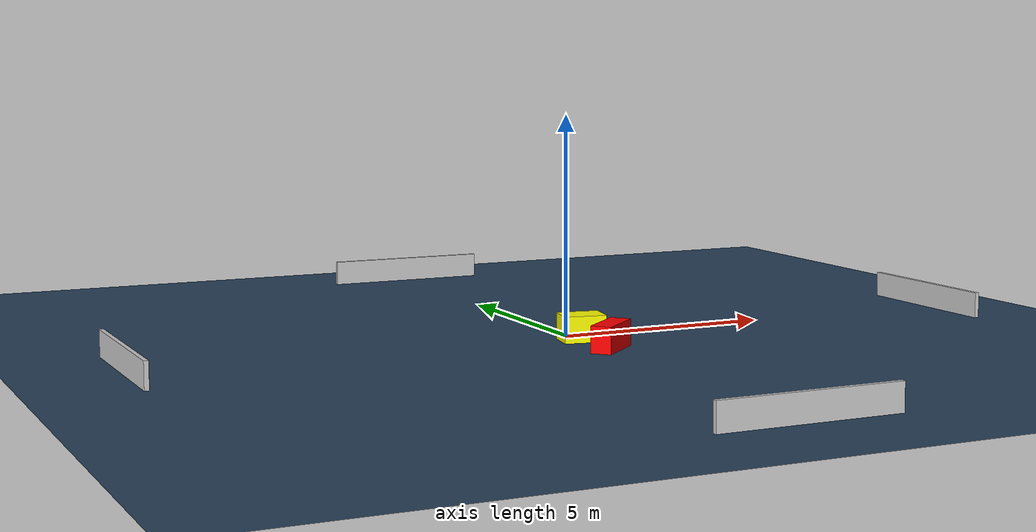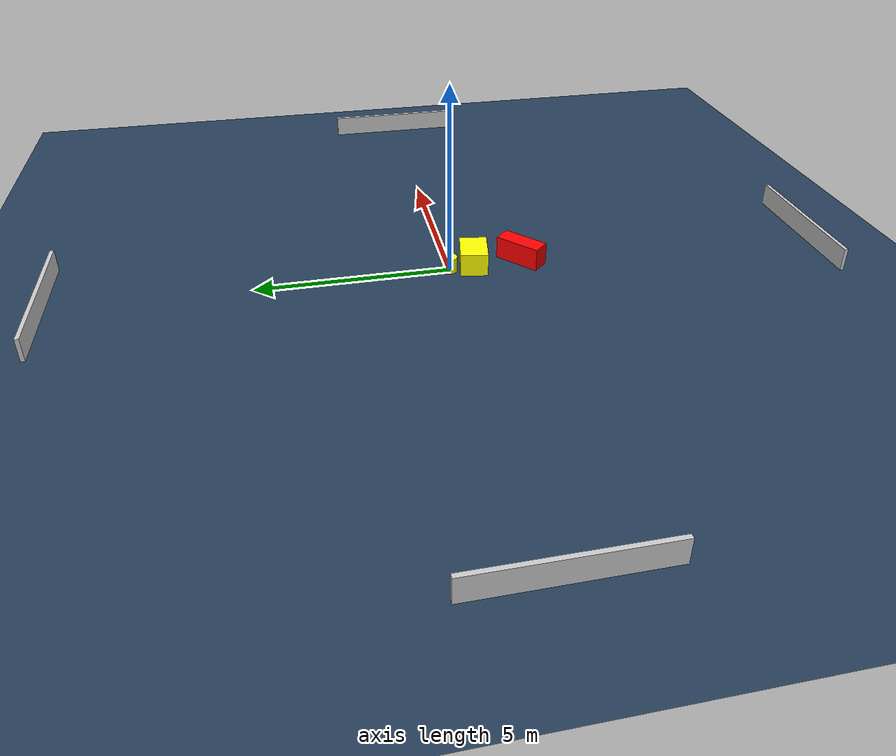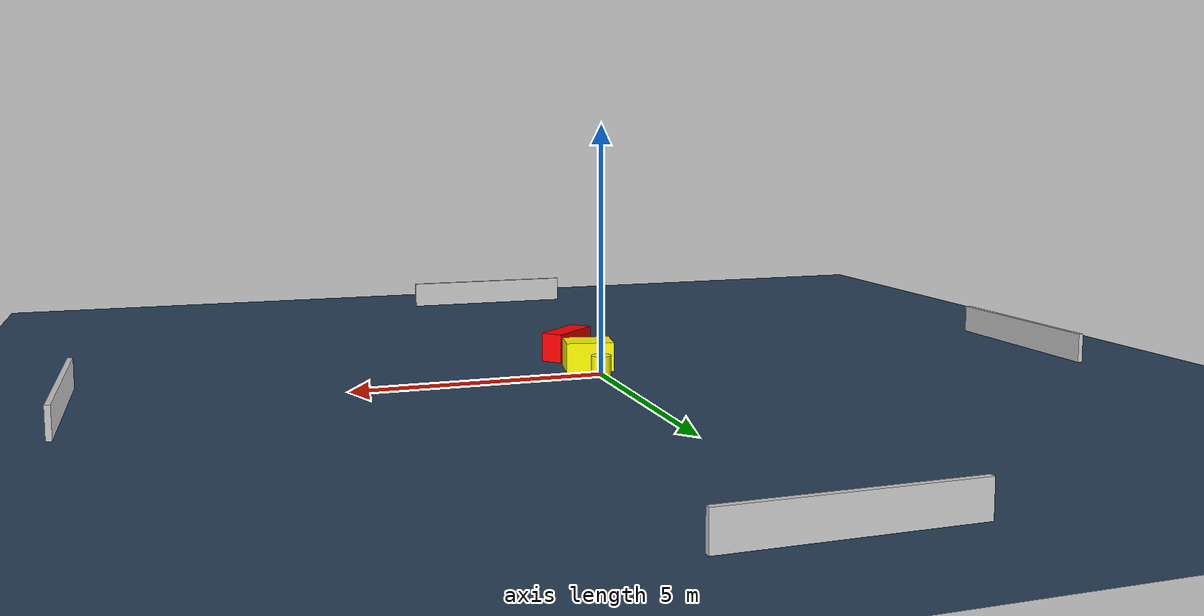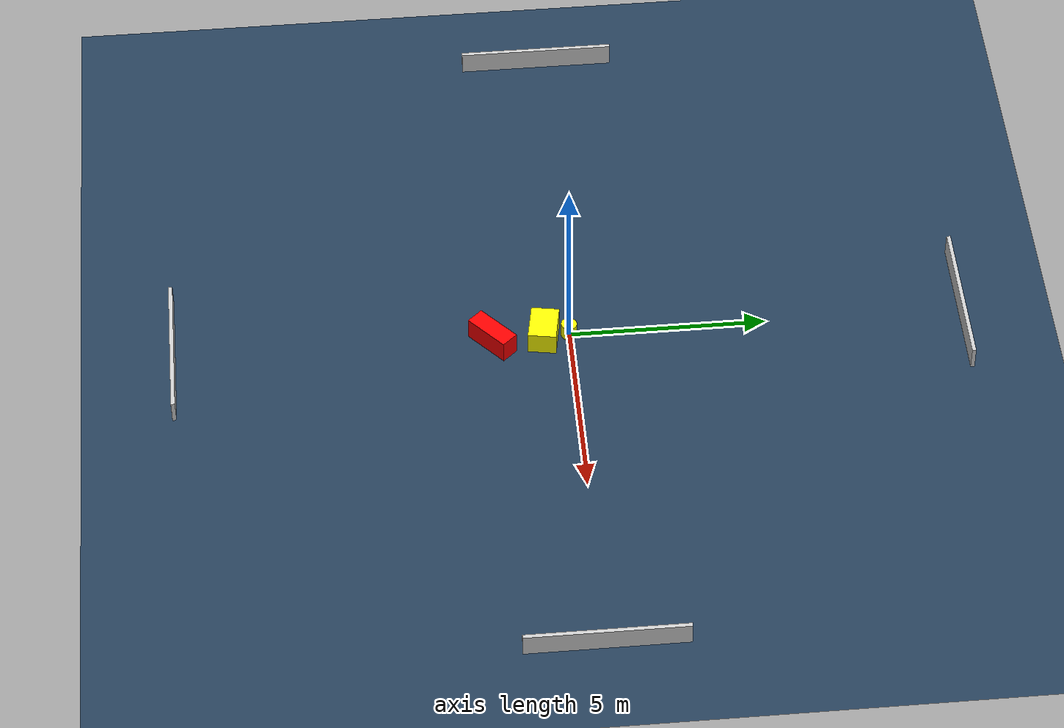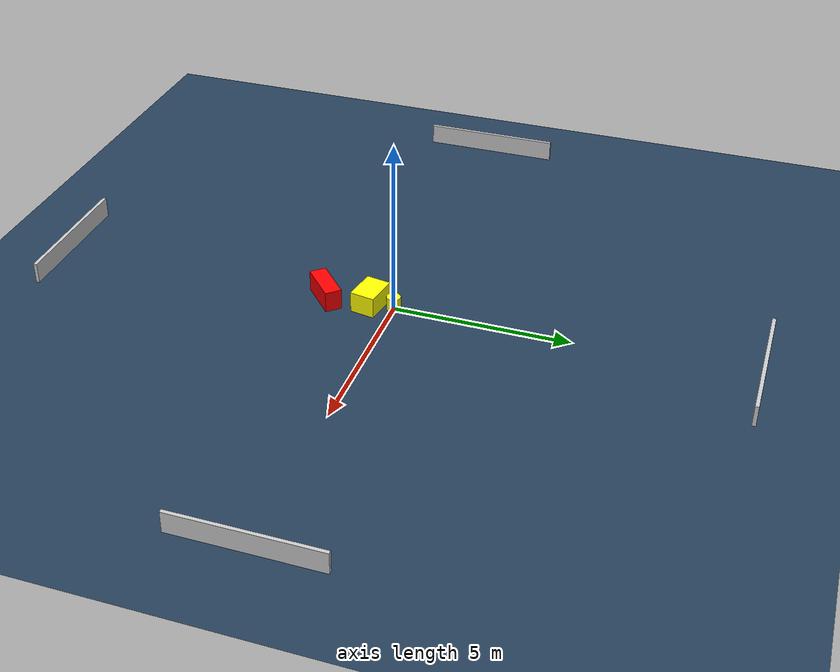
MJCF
<?xml version="1.0" ?>
<mujoco model="generated_environment">
  <option timestep="0.01" integrator="RK4" cone="elliptic"/>
  <default>
    <geom density="1"/>
  </default>
  <asset>
    <texture builtin="gradient" height="3072" name="skybox" rgb1="0.3 0.5 0.7" rgb2="0 0 0" type="skybox" width="512"/>
    <texture builtin="checker" height="300" name="groundplane" rgb1="0.2 0.3 0.4" rgb2="0.1 0.2 0.3" type="2d" width="300"/>
    <material name="groundplane" reflectance="0.2" texrepeat="5 5" texture="groundplane"/>
  </asset>
  <worldbody>
    <light dir="0 0 -1" directional="true" pos="0 0 1.5"/>
    <geom condim="3" friction="0.5 0.005 0.001" material="groundplane" name="floor" pos="0 0 0" size="0 0 0.05" type="plane"/>
    <body name="walls">
      <geom name="wall_1" condim="4" pos="-10.0 0.0 0.3" rgba="0.800000011920929 0.800000011920929 0.800000011920929 1.0" size="0.05 2.0 0.3" type="box"/>
      <geom name="wall_2" condim="4" pos="10.0 0.0 0.3" rgba="0.800000011920929 0.800000011920929 0.800000011920929 1.0" size="0.05 2.0 0.3" type="box"/>
      <geom name="wall_3" condim="4" pos="0.0 -10.0 0.3" rgba="0.800000011920929 0.800000011920929 0.800000011920929 1.0" size="2.0 0.05 0.3" type="box"/>
      <geom name="wall_4" condim="4" pos="0.0 10.0 0.3" rgba="0.800000011920929 0.800000011920929 0.800000011920929 1.0" size="2.0 0.05 0.3" type="box"/>
    </body>
    <body name="robot">
      <joint name="joint_x" type="slide" pos="0 0 0" axis="1 0 0"/>
      <joint name="joint_y" type="slide" pos="0 0 0" axis="0 1 0"/>
      <geom name="robot" type="cylinder" pos="0.0 0.0 0.2" size="0.2 0.2 0.0" mass="5.0" friction="1.0 0.005 0.0001" condim="4" rgba="1.0 1.0 0.0 1.0"/>
    </body>
    <body name="obstacle_1_movable">
      <geom name="obstacle_1_movable" condim="4" pos="0.07194312625205265 -0.6473961542147482 0.3" euler="0 0 260.06293023196196" friction="0.0 0.005 0.001" rgba="1.0 1.0 0.0 1.0" size="0.35572625445319955 0.4828219207265339 0.3" type="box" mass="0.1"/>
      <joint type="free"/>
    </body>
    <body name="obstacle_2_static">
      <geom name="obstacle_2_static" condim="4" pos="0.1383767076868828 -1.948635134752822 0.3" euler="0 0 131.94214650539053" friction="0.0 0.005 0.001" rgba="1.0 0.0 0.0 1.0" size="0.236340200584357 0.6151674827789295 0.3" type="box"/>
    </body>
  </worldbody>
  <actuator>
    <motor name="actuator_x" joint="joint_x" gear="1" ctrlrange="-1 1"/>
    <motor name="actuator_y" joint="joint_y" gear="1" ctrlrange="-1 1"/>
  </actuator>
</mujoco>
